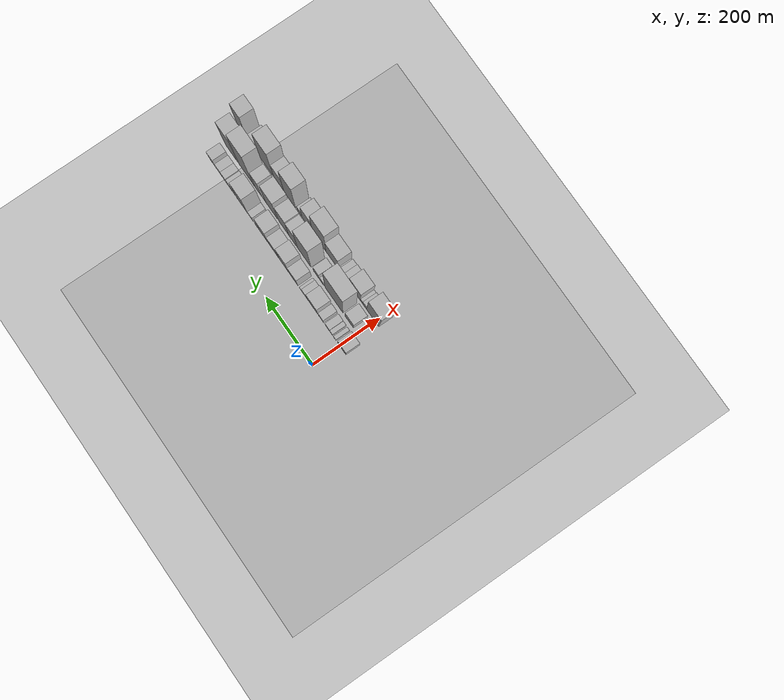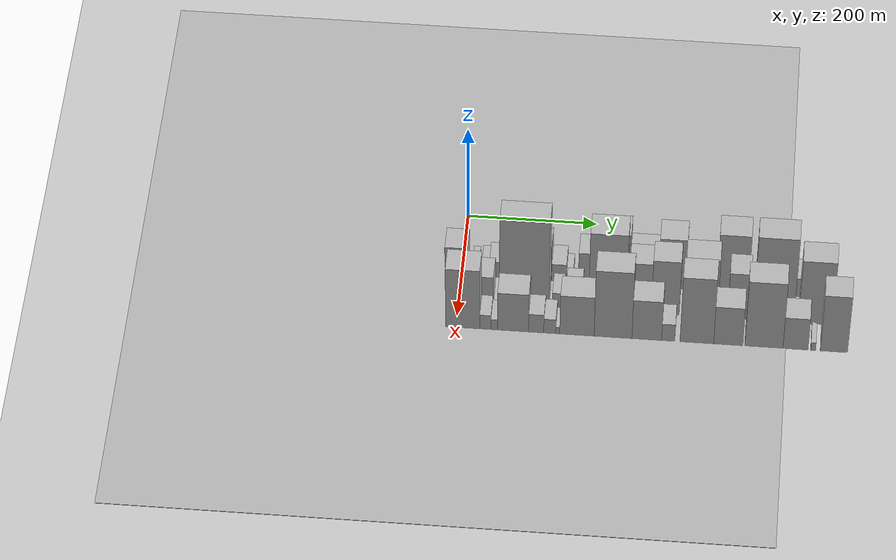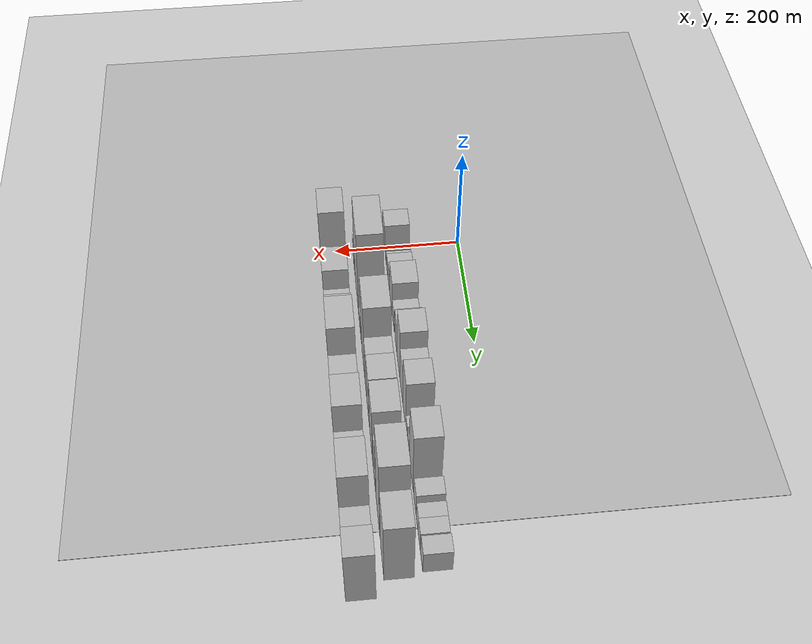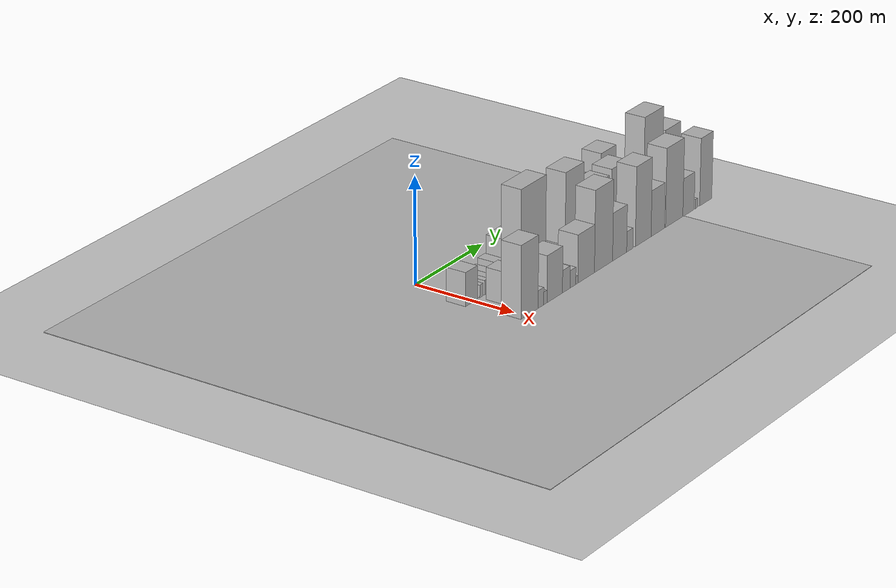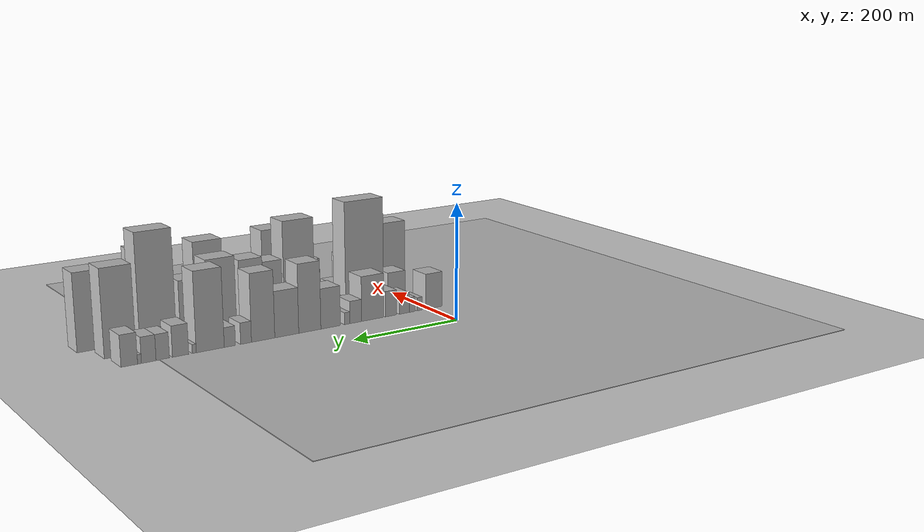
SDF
<sdf version="1.6">
 <world name="default">
  <include><name>ground_plane_1</name><uri>model://HANNAS_ground_plane</uri></include>
  <include>
   <name>ground_plane_2</name>
   <uri>model://HANNAS_ground_plane</uri>
   <pose>100 0 0  0 0 0</pose>
  </include>
  <model name="building_17">
   <static>1</static>
   <pose>100.0000 -8.6948 0 0.000000 0.000000 0.000000</pose>
   <link name="link">
    <pose>0 0 31.50 0 0 0</pose>
    <collision name="collision"><geometry><box><size>40.0000 34.7825 63.0000</size></box></geometry></collision>
    <visual name="visual">
     <cast_shadows>0</cast_shadows>
     <geometry><box><size>40.0000 34.7825 63.0000</size></box></geometry>
     <material>
      <script>
       <uri>model://HANNAS_wall/materials/scripts</uri>
       <uri>model://HANNAS_wall/materials/textures</uri>
       <name>vrc/HANNAS_wall</name>
      </script>
     </material>
    </visual>
   </link>
  </model>
  <model name="building_18">
   <static>1</static>
   <pose>100.0000 20.9811 0 0.000000 0.000000 0.000000</pose>
   <link name="link">
    <pose>0 0 12.00 0 0 0</pose>
    <collision name="collision"><geometry><box><size>40.0000 10.5693 24.0000</size></box></geometry></collision>
    <visual name="visual">
     <cast_shadows>0</cast_shadows>
     <geometry><box><size>40.0000 10.5693 24.0000</size></box></geometry>
     <material>
      <script>
       <uri>model://HANNAS_wall/materials/scripts</uri>
       <uri>model://HANNAS_wall/materials/textures</uri>
       <name>vrc/HANNAS_wall</name>
      </script>
     </material>
    </visual>
   </link>
  </model>
  <model name="building_19">
   <static>1</static>
   <pose>100.0000 36.2725 0 0.000000 0.000000 0.000000</pose>
   <link name="link">
    <pose>0 0 13.50 0 0 0</pose>
    <collision name="collision"><geometry><box><size>40.0000 12.0134 27.0000</size></box></geometry></collision>
    <visual name="visual">
     <cast_shadows>0</cast_shadows>
     <geometry><box><size>40.0000 12.0134 27.0000</size></box></geometry>
     <material>
      <script>
       <uri>model://HANNAS_wall/materials/scripts</uri>
       <uri>model://HANNAS_wall/materials/textures</uri>
       <name>vrc/HANNAS_wall</name>
      </script>
     </material>
    </visual>
   </link>
  </model>
  <model name="building_20">
   <static>1</static>
   <pose>100.0000 52.2547 0 0.000000 0.000000 0.000000</pose>
   <link name="link">
    <pose>0 0 18.00 0 0 0</pose>
    <collision name="collision"><geometry><box><size>40.0000 19.9511 36.0000</size></box></geometry></collision>
    <visual name="visual">
     <cast_shadows>0</cast_shadows>
     <geometry><box><size>40.0000 19.9511 36.0000</size></box></geometry>
     <material>
      <script>
       <uri>model://HANNAS_wall/materials/scripts</uri>
       <uri>model://HANNAS_wall/materials/textures</uri>
       <name>vrc/HANNAS_wall</name>
      </script>
     </material>
    </visual>
   </link>
  </model>
  <model name="building_21">
   <static>1</static>
   <pose>100.0000 79.4977 0 0.000000 0.000000 0.000000</pose>
   <link name="link">
    <pose>0 0 22.50 0 0 0</pose>
    <collision name="collision"><geometry><box><size>40.0000 22.5349 45.0000</size></box></geometry></collision>
    <visual name="visual">
     <cast_shadows>0</cast_shadows>
     <geometry><box><size>40.0000 22.5349 45.0000</size></box></geometry>
     <material>
      <script>
       <uri>model://HANNAS_wall/materials/scripts</uri>
       <uri>model://HANNAS_wall/materials/textures</uri>
       <name>vrc/HANNAS_wall</name>
      </script>
     </material>
    </visual>
   </link>
  </model>
  <model name="building_22">
   <static>1</static>
   <pose>100.0000 115.7366 0 0.000000 0.000000 0.000000</pose>
   <link name="link">
    <pose>0 0 39.00 0 0 0</pose>
    <collision name="collision"><geometry><box><size>40.0000 43.9428 78.0000</size></box></geometry></collision>
    <visual name="visual">
     <cast_shadows>0</cast_shadows>
     <geometry><box><size>40.0000 43.9428 78.0000</size></box></geometry>
     <material>
      <script>
       <uri>model://HANNAS_wall/materials/scripts</uri>
       <uri>model://HANNAS_wall/materials/textures</uri>
       <name>vrc/HANNAS_wall</name>
      </script>
     </material>
    </visual>
   </link>
  </model>
  <model name="building_23">
   <static>1</static>
   <pose>100.0000 149.1312 0 0.000000 0.000000 0.000000</pose>
   <link name="link">
    <pose>0 0 19.50 0 0 0</pose>
    <collision name="collision"><geometry><box><size>40.0000 22.8464 39.0000</size></box></geometry></collision>
    <visual name="visual">
     <cast_shadows>0</cast_shadows>
     <geometry><box><size>40.0000 22.8464 39.0000</size></box></geometry>
     <material>
      <script>
       <uri>model://HANNAS_wall/materials/scripts</uri>
       <uri>model://HANNAS_wall/materials/textures</uri>
       <name>vrc/HANNAS_wall</name>
      </script>
     </material>
    </visual>
   </link>
  </model>
  <model name="building_24">
   <static>1</static>
   <pose>100.0000 165.6955 0 0.000000 0.000000 0.000000</pose>
   <link name="link">
    <pose>0 0 10.50 0 0 0</pose>
    <collision name="collision"><geometry><box><size>40.0000 10.2822 21.0000</size></box></geometry></collision>
    <visual name="visual">
     <cast_shadows>0</cast_shadows>
     <geometry><box><size>40.0000 10.2822 21.0000</size></box></geometry>
     <material>
      <script>
       <uri>model://HANNAS_wall/materials/scripts</uri>
       <uri>model://HANNAS_wall/materials/textures</uri>
       <name>vrc/HANNAS_wall</name>
      </script>
     </material>
    </visual>
   </link>
  </model>
  <model name="building_25">
   <static>1</static>
   <pose>100.0000 197.4413 0 0.000000 0.000000 0.000000</pose>
   <link name="link">
    <pose>0 0 34.50 0 0 0</pose>
    <collision name="collision"><geometry><box><size>40.0000 37.2094 69.0000</size></box></geometry></collision>
    <visual name="visual">
     <cast_shadows>0</cast_shadows>
     <geometry><box><size>40.0000 37.2094 69.0000</size></box></geometry>
     <material>
      <script>
       <uri>model://HANNAS_wall/materials/scripts</uri>
       <uri>model://HANNAS_wall/materials/textures</uri>
       <name>vrc/HANNAS_wall</name>
      </script>
     </material>
    </visual>
   </link>
  </model>
  <model name="building_26">
   <static>1</static>
   <pose>100.0000 236.7408 0 0.000000 0.000000 0.000000</pose>
   <link name="link">
    <pose>0 0 58.50 0 0 0</pose>
    <collision name="collision"><geometry><box><size>40.0000 41.3896 117.0000</size></box></geometry></collision>
    <visual name="visual">
     <cast_shadows>0</cast_shadows>
     <geometry><box><size>40.0000 41.3896 117.0000</size></box></geometry>
     <material>
      <script>
       <uri>model://HANNAS_wall/materials/scripts</uri>
       <uri>model://HANNAS_wall/materials/textures</uri>
       <name>vrc/HANNAS_wall</name>
      </script>
     </material>
    </visual>
   </link>
  </model>
  <model name="building_27">
   <static>1</static>
   <pose>100.0000 279.3616 0 0.000000 0.000000 0.000000</pose>
   <link name="link">
    <pose>0 0 39.00 0 0 0</pose>
    <collision name="collision"><geometry><box><size>40.0000 43.8519 78.0000</size></box></geometry></collision>
    <visual name="visual">
     <cast_shadows>0</cast_shadows>
     <geometry><box><size>40.0000 43.8519 78.0000</size></box></geometry>
     <material>
      <script>
       <uri>model://HANNAS_wall/materials/scripts</uri>
       <uri>model://HANNAS_wall/materials/textures</uri>
       <name>vrc/HANNAS_wall</name>
      </script>
     </material>
    </visual>
   </link>
  </model>
  <model name="building_28">
   <static>1</static>
   <pose>100.0000 322.2497 0 0.000000 0.000000 0.000000</pose>
   <link name="link">
    <pose>0 0 57.00 0 0 0</pose>
    <collision name="collision"><geometry><box><size>40.0000 41.9244 114.0000</size></box></geometry></collision>
    <visual name="visual">
     <cast_shadows>0</cast_shadows>
     <geometry><box><size>40.0000 41.9244 114.0000</size></box></geometry>
     <material>
      <script>
       <uri>model://HANNAS_wall/materials/scripts</uri>
       <uri>model://HANNAS_wall/materials/textures</uri>
       <name>vrc/HANNAS_wall</name>
      </script>
     </material>
    </visual>
   </link>
  </model>
  <model name="building_29">
   <static>1</static>
   <pose>100.0000 352.7998 0 0.000000 0.000000 0.000000</pose>
   <link name="link">
    <pose>0 0 18.00 0 0 0</pose>
    <collision name="collision"><geometry><box><size>40.0000 19.1758 36.0000</size></box></geometry></collision>
    <visual name="visual">
     <cast_shadows>0</cast_shadows>
     <geometry><box><size>40.0000 19.1758 36.0000</size></box></geometry>
     <material>
      <script>
       <uri>model://HANNAS_wall/materials/scripts</uri>
       <uri>model://HANNAS_wall/materials/textures</uri>
       <name>vrc/HANNAS_wall</name>
      </script>
     </material>
    </visual>
   </link>
  </model>
  <model name="building_30">
   <static>1</static>
   <pose>100.0000 381.1690 0 0.000000 0.000000 0.000000</pose>
   <link name="link">
    <pose>0 0 16.50 0 0 0</pose>
    <collision name="collision"><geometry><box><size>40.0000 19.5627 33.0000</size></box></geometry></collision>
    <visual name="visual">
     <cast_shadows>0</cast_shadows>
     <geometry><box><size>40.0000 19.5627 33.0000</size></box></geometry>
     <material>
      <script>
       <uri>model://HANNAS_wall/materials/scripts</uri>
       <uri>model://HANNAS_wall/materials/textures</uri>
       <name>vrc/HANNAS_wall</name>
      </script>
     </material>
    </visual>
   </link>
  </model>
  <model name="building_31">
   <static>1</static>
   <pose>100.0000 415.0121 0 0.000000 0.000000 0.000000</pose>
   <link name="link">
    <pose>0 0 66.00 0 0 0</pose>
    <collision name="collision"><geometry><box><size>40.0000 48.1235 132.0000</size></box></geometry></collision>
    <visual name="visual">
     <cast_shadows>0</cast_shadows>
     <geometry><box><size>40.0000 48.1235 132.0000</size></box></geometry>
     <material>
      <script>
       <uri>model://HANNAS_wall/materials/scripts</uri>
       <uri>model://HANNAS_wall/materials/textures</uri>
       <name>vrc/HANNAS_wall</name>
      </script>
     </material>
    </visual>
   </link>
  </model>
  <model name="building_32">
   <static>1</static>
   <pose>100.0000 442.3995 0 0.000000 0.000000 0.000000</pose>
   <link name="link">
    <pose>0 0 7.50 0 0 0</pose>
    <collision name="collision"><geometry><box><size>40.0000 6.6512 15.0000</size></box></geometry></collision>
    <visual name="visual">
     <cast_shadows>0</cast_shadows>
     <geometry><box><size>40.0000 6.6512 15.0000</size></box></geometry>
     <material>
      <script>
       <uri>model://HANNAS_wall/materials/scripts</uri>
       <uri>model://HANNAS_wall/materials/textures</uri>
       <name>vrc/HANNAS_wall</name>
      </script>
     </material>
    </visual>
   </link>
  </model>
  <model name="building_33">
   <static>1</static>
   <pose>100.0000 465.3273 0 0.000000 0.000000 0.000000</pose>
   <link name="link">
    <pose>0 0 25.50 0 0 0</pose>
    <collision name="collision"><geometry><box><size>40.0000 27.2045 51.0000</size></box></geometry></collision>
    <visual name="visual">
     <cast_shadows>0</cast_shadows>
     <geometry><box><size>40.0000 27.2045 51.0000</size></box></geometry>
     <material>
      <script>
       <uri>model://HANNAS_wall/materials/scripts</uri>
       <uri>model://HANNAS_wall/materials/textures</uri>
       <name>vrc/HANNAS_wall</name>
      </script>
     </material>
    </visual>
   </link>
  </model>
  <model name="building_34">
   <static>1</static>
   <pose>100.0000 494.9482 0 0.000000 0.000000 0.000000</pose>
   <link name="link">
    <pose>0 0 21.00 0 0 0</pose>
    <collision name="collision"><geometry><box><size>40.0000 22.0373 42.0000</size></box></geometry></collision>
    <visual name="visual">
     <cast_shadows>0</cast_shadows>
     <geometry><box><size>40.0000 22.0373 42.0000</size></box></geometry>
     <material>
      <script>
       <uri>model://HANNAS_wall/materials/scripts</uri>
       <uri>model://HANNAS_wall/materials/textures</uri>
       <name>vrc/HANNAS_wall</name>
      </script>
     </material>
    </visual>
   </link>
  </model>
  <model name="building_35">
   <static>1</static>
   <pose>100.0000 517.9257 0 0.000000 0.000000 0.000000</pose>
   <link name="link">
    <pose>0 0 21.00 0 0 0</pose>
    <collision name="collision"><geometry><box><size>40.0000 23.9178 42.0000</size></box></geometry></collision>
    <visual name="visual">
     <cast_shadows>0</cast_shadows>
     <geometry><box><size>40.0000 23.9178 42.0000</size></box></geometry>
     <material>
      <script>
       <uri>model://HANNAS_wall/materials/scripts</uri>
       <uri>model://HANNAS_wall/materials/textures</uri>
       <name>vrc/HANNAS_wall</name>
      </script>
     </material>
    </visual>
   </link>
  </model>
  <model name="building_36">
   <static>1</static>
   <pose>100.0000 532.9595 0 0.000000 0.000000 0.000000</pose>
   <link name="link">
    <pose>0 0 7.50 0 0 0</pose>
    <collision name="collision"><geometry><box><size>40.0000 6.1499 15.0000</size></box></geometry></collision>
    <visual name="visual">
     <cast_shadows>0</cast_shadows>
     <geometry><box><size>40.0000 6.1499 15.0000</size></box></geometry>
     <material>
      <script>
       <uri>model://HANNAS_wall/materials/scripts</uri>
       <uri>model://HANNAS_wall/materials/textures</uri>
       <name>vrc/HANNAS_wall</name>
      </script>
     </material>
    </visual>
   </link>
  </model>
  <model name="building_37">
   <static>1</static>
   <pose>100.0000 549.3498 0 0.000000 0.000000 0.000000</pose>
   <link name="link">
    <pose>0 0 25.50 0 0 0</pose>
    <collision name="collision"><geometry><box><size>40.0000 26.6306 51.0000</size></box></geometry></collision>
    <visual name="visual">
     <cast_shadows>0</cast_shadows>
     <geometry><box><size>40.0000 26.6306 51.0000</size></box></geometry>
     <material>
      <script>
       <uri>model://HANNAS_wall/materials/scripts</uri>
       <uri>model://HANNAS_wall/materials/textures</uri>
       <name>vrc/HANNAS_wall</name>
      </script>
     </material>
    </visual>
   </link>
  </model>
  <model name="building_54">
   <static>1</static>
   <pose>152.0000 34.7778 0 0.000000 0.000000 0.000000</pose>
   <link name="link">
    <pose>0 0 30.00 0 0 0</pose>
    <collision name="collision"><geometry><box><size>40.0000 35.8274 60.0000</size></box></geometry></collision>
    <visual name="visual">
     <cast_shadows>0</cast_shadows>
     <geometry><box><size>40.0000 35.8274 60.0000</size></box></geometry>
     <material>
      <script>
       <uri>model://HANNAS_wall/materials/scripts</uri>
       <uri>model://HANNAS_wall/materials/textures</uri>
       <name>vrc/HANNAS_wall</name>
      </script>
     </material>
    </visual>
   </link>
  </model>
  <model name="building_55">
   <static>1</static>
   <pose>152.0000 99.6434 0 0.000000 0.000000 0.000000</pose>
   <link name="link">
    <pose>0 0 97.50 0 0 0</pose>
    <collision name="collision"><geometry><box><size>40.0000 75.9037 195.0000</size></box></geometry></collision>
    <visual name="visual">
     <cast_shadows>0</cast_shadows>
     <geometry><box><size>40.0000 75.9037 195.0000</size></box></geometry>
     <material>
      <script>
       <uri>model://HANNAS_wall/materials/scripts</uri>
       <uri>model://HANNAS_wall/materials/textures</uri>
       <name>vrc/HANNAS_wall</name>
      </script>
     </material>
    </visual>
   </link>
  </model>
  <model name="building_56">
   <static>1</static>
   <pose>152.0000 151.2691 0 0.000000 0.000000 0.000000</pose>
   <link name="link">
    <pose>0 0 16.50 0 0 0</pose>
    <collision name="collision"><geometry><box><size>40.0000 17.3475 33.0000</size></box></geometry></collision>
    <visual name="visual">
     <cast_shadows>0</cast_shadows>
     <geometry><box><size>40.0000 17.3475 33.0000</size></box></geometry>
     <material>
      <script>
       <uri>model://HANNAS_wall/materials/scripts</uri>
       <uri>model://HANNAS_wall/materials/textures</uri>
       <name>vrc/HANNAS_wall</name>
      </script>
     </material>
    </visual>
   </link>
  </model>
  <model name="building_57">
   <static>1</static>
   <pose>152.0000 175.4248 0 0.000000 0.000000 0.000000</pose>
   <link name="link">
    <pose>0 0 24.00 0 0 0</pose>
    <collision name="collision"><geometry><box><size>40.0000 24.9639 48.0000</size></box></geometry></collision>
    <visual name="visual">
     <cast_shadows>0</cast_shadows>
     <geometry><box><size>40.0000 24.9639 48.0000</size></box></geometry>
     <material>
      <script>
       <uri>model://HANNAS_wall/materials/scripts</uri>
       <uri>model://HANNAS_wall/materials/textures</uri>
       <name>vrc/HANNAS_wall</name>
      </script>
     </material>
    </visual>
   </link>
  </model>
  <model name="building_58">
   <static>1</static>
   <pose>152.0000 226.5765 0 0.000000 0.000000 0.000000</pose>
   <link name="link">
    <pose>0 0 88.50 0 0 0</pose>
    <collision name="collision"><geometry><box><size>40.0000 57.3395 177.0000</size></box></geometry></collision>
    <visual name="visual">
     <cast_shadows>0</cast_shadows>
     <geometry><box><size>40.0000 57.3395 177.0000</size></box></geometry>
     <material>
      <script>
       <uri>model://HANNAS_wall/materials/scripts</uri>
       <uri>model://HANNAS_wall/materials/textures</uri>
       <name>vrc/HANNAS_wall</name>
      </script>
     </material>
    </visual>
   </link>
  </model>
  <model name="building_59">
   <static>1</static>
   <pose>152.0000 275.9863 0 0.000000 0.000000 0.000000</pose>
   <link name="link">
    <pose>0 0 57.00 0 0 0</pose>
    <collision name="collision"><geometry><box><size>40.0000 35.4802 114.0000</size></box></geometry></collision>
    <visual name="visual">
     <cast_shadows>0</cast_shadows>
     <geometry><box><size>40.0000 35.4802 114.0000</size></box></geometry>
     <material>
      <script>
       <uri>model://HANNAS_wall/materials/scripts</uri>
       <uri>model://HANNAS_wall/materials/textures</uri>
       <name>vrc/HANNAS_wall</name>
      </script>
     </material>
    </visual>
   </link>
  </model>
  <model name="building_60">
   <static>1</static>
   <pose>152.0000 314.8461 0 0.000000 0.000000 0.000000</pose>
   <link name="link">
    <pose>0 0 61.50 0 0 0</pose>
    <collision name="collision"><geometry><box><size>40.0000 42.2395 123.0000</size></box></geometry></collision>
    <visual name="visual">
     <cast_shadows>0</cast_shadows>
     <geometry><box><size>40.0000 42.2395 123.0000</size></box></geometry>
     <material>
      <script>
       <uri>model://HANNAS_wall/materials/scripts</uri>
       <uri>model://HANNAS_wall/materials/textures</uri>
       <name>vrc/HANNAS_wall</name>
      </script>
     </material>
    </visual>
   </link>
  </model>
  <model name="building_61">
   <static>1</static>
   <pose>152.0000 368.6090 0 0.000000 0.000000 0.000000</pose>
   <link name="link">
    <pose>0 0 66.00 0 0 0</pose>
    <collision name="collision"><geometry><box><size>40.0000 51.2863 132.0000</size></box></geometry></collision>
    <visual name="visual">
     <cast_shadows>0</cast_shadows>
     <geometry><box><size>40.0000 51.2863 132.0000</size></box></geometry>
     <material>
      <script>
       <uri>model://HANNAS_wall/materials/scripts</uri>
       <uri>model://HANNAS_wall/materials/textures</uri>
       <name>vrc/HANNAS_wall</name>
      </script>
     </material>
    </visual>
   </link>
  </model>
  <model name="building_62">
   <static>1</static>
   <pose>152.0000 399.4510 0 0.000000 0.000000 0.000000</pose>
   <link name="link">
    <pose>0 0 12.00 0 0 0</pose>
    <collision name="collision"><geometry><box><size>40.0000 10.3978 24.0000</size></box></geometry></collision>
    <visual name="visual">
     <cast_shadows>0</cast_shadows>
     <geometry><box><size>40.0000 10.3978 24.0000</size></box></geometry>
     <material>
      <script>
       <uri>model://HANNAS_wall/materials/scripts</uri>
       <uri>model://HANNAS_wall/materials/textures</uri>
       <name>vrc/HANNAS_wall</name>
      </script>
     </material>
    </visual>
   </link>
  </model>
  <model name="building_63">
   <static>1</static>
   <pose>152.0000 425.5350 0 0.000000 0.000000 0.000000</pose>
   <link name="link">
    <pose>0 0 52.50 0 0 0</pose>
    <collision name="collision"><geometry><box><size>40.0000 31.7702 105.0000</size></box></geometry></collision>
    <visual name="visual">
     <cast_shadows>0</cast_shadows>
     <geometry><box><size>40.0000 31.7702 105.0000</size></box></geometry>
     <material>
      <script>
       <uri>model://HANNAS_wall/materials/scripts</uri>
       <uri>model://HANNAS_wall/materials/textures</uri>
       <name>vrc/HANNAS_wall</name>
      </script>
     </material>
    </visual>
   </link>
  </model>
  <model name="building_64">
   <static>1</static>
   <pose>152.0000 444.9514 0 0.000000 0.000000 0.000000</pose>
   <link name="link">
    <pose>0 0 7.50 0 0 0</pose>
    <collision name="collision"><geometry><box><size>40.0000 7.0624 15.0000</size></box></geometry></collision>
    <visual name="visual">
     <cast_shadows>0</cast_shadows>
     <geometry><box><size>40.0000 7.0624 15.0000</size></box></geometry>
     <material>
      <script>
       <uri>model://HANNAS_wall/materials/scripts</uri>
       <uri>model://HANNAS_wall/materials/textures</uri>
       <name>vrc/HANNAS_wall</name>
      </script>
     </material>
    </visual>
   </link>
  </model>
  <model name="building_65">
   <static>1</static>
   <pose>152.0000 479.2980 0 0.000000 0.000000 0.000000</pose>
   <link name="link">
    <pose>0 0 96.00 0 0 0</pose>
    <collision name="collision"><geometry><box><size>40.0000 61.6308 192.0000</size></box></geometry></collision>
    <visual name="visual">
     <cast_shadows>0</cast_shadows>
     <geometry><box><size>40.0000 61.6308 192.0000</size></box></geometry>
     <material>
      <script>
       <uri>model://HANNAS_wall/materials/scripts</uri>
       <uri>model://HANNAS_wall/materials/textures</uri>
       <name>vrc/HANNAS_wall</name>
      </script>
     </material>
    </visual>
   </link>
  </model>
  <model name="building_66">
   <static>1</static>
   <pose>152.0000 543.0552 0 0.000000 0.000000 0.000000</pose>
   <link name="link">
    <pose>0 0 72.00 0 0 0</pose>
    <collision name="collision"><geometry><box><size>40.0000 51.8836 144.0000</size></box></geometry></collision>
    <visual name="visual">
     <cast_shadows>0</cast_shadows>
     <geometry><box><size>40.0000 51.8836 144.0000</size></box></geometry>
     <material>
      <script>
       <uri>model://HANNAS_wall/materials/scripts</uri>
       <uri>model://HANNAS_wall/materials/textures</uri>
       <name>vrc/HANNAS_wall</name>
      </script>
     </material>
    </visual>
   </link>
  </model>
  <model name="building_87">
   <static>1</static>
   <pose>204.0000 10.0841 0 0.000000 0.000000 0.000000</pose>
   <link name="link">
    <pose>0 0 67.50 0 0 0</pose>
    <collision name="collision"><geometry><box><size>40.0000 51.7989 135.0000</size></box></geometry></collision>
    <visual name="visual">
     <cast_shadows>0</cast_shadows>
     <geometry><box><size>40.0000 51.7989 135.0000</size></box></geometry>
     <material>
      <script>
       <uri>model://HANNAS_wall/materials/scripts</uri>
       <uri>model://HANNAS_wall/materials/textures</uri>
       <name>vrc/HANNAS_wall</name>
      </script>
     </material>
    </visual>
   </link>
  </model>
  <model name="building_88">
   <static>1</static>
   <pose>204.0000 44.5185 0 0.000000 0.000000 0.000000</pose>
   <link name="link">
    <pose>0 0 16.50 0 0 0</pose>
    <collision name="collision"><geometry><box><size>40.0000 17.0699 33.0000</size></box></geometry></collision>
    <visual name="visual">
     <cast_shadows>0</cast_shadows>
     <geometry><box><size>40.0000 17.0699 33.0000</size></box></geometry>
     <material>
      <script>
       <uri>model://HANNAS_wall/materials/scripts</uri>
       <uri>model://HANNAS_wall/materials/textures</uri>
       <name>vrc/HANNAS_wall</name>
      </script>
     </material>
    </visual>
   </link>
  </model>
  <model name="building_89">
   <static>1</static>
   <pose>204.0000 57.9771 0 0.000000 0.000000 0.000000</pose>
   <link name="link">
    <pose>0 0 12.00 0 0 0</pose>
    <collision name="collision"><geometry><box><size>40.0000 9.8472 24.0000</size></box></geometry></collision>
    <visual name="visual">
     <cast_shadows>0</cast_shadows>
     <geometry><box><size>40.0000 9.8472 24.0000</size></box></geometry>
     <material>
      <script>
       <uri>model://HANNAS_wall/materials/scripts</uri>
       <uri>model://HANNAS_wall/materials/textures</uri>
       <name>vrc/HANNAS_wall</name>
      </script>
     </material>
    </visual>
   </link>
  </model>
  <model name="building_90">
   <static>1</static>
   <pose>204.0000 86.6123 0 0.000000 0.000000 0.000000</pose>
   <link name="link">
    <pose>0 0 43.50 0 0 0</pose>
    <collision name="collision"><geometry><box><size>40.0000 47.4232 87.0000</size></box></geometry></collision>
    <visual name="visual">
     <cast_shadows>0</cast_shadows>
     <geometry><box><size>40.0000 47.4232 87.0000</size></box></geometry>
     <material>
      <script>
       <uri>model://HANNAS_wall/materials/scripts</uri>
       <uri>model://HANNAS_wall/materials/textures</uri>
       <name>vrc/HANNAS_wall</name>
      </script>
     </material>
    </visual>
   </link>
  </model>
  <model name="building_91">
   <static>1</static>
   <pose>204.0000 121.9234 0 0.000000 0.000000 0.000000</pose>
   <link name="link">
    <pose>0 0 21.00 0 0 0</pose>
    <collision name="collision"><geometry><box><size>40.0000 23.1990 42.0000</size></box></geometry></collision>
    <visual name="visual">
     <cast_shadows>0</cast_shadows>
     <geometry><box><size>40.0000 23.1990 42.0000</size></box></geometry>
     <material>
      <script>
       <uri>model://HANNAS_wall/materials/scripts</uri>
       <uri>model://HANNAS_wall/materials/textures</uri>
       <name>vrc/HANNAS_wall</name>
      </script>
     </material>
    </visual>
   </link>
  </model>
  <model name="building_92">
   <static>1</static>
   <pose>204.0000 142.5553 0 0.000000 0.000000 0.000000</pose>
   <link name="link">
    <pose>0 0 16.50 0 0 0</pose>
    <collision name="collision"><geometry><box><size>40.0000 18.0648 33.0000</size></box></geometry></collision>
    <visual name="visual">
     <cast_shadows>0</cast_shadows>
     <geometry><box><size>40.0000 18.0648 33.0000</size></box></geometry>
     <material>
      <script>
       <uri>model://HANNAS_wall/materials/scripts</uri>
       <uri>model://HANNAS_wall/materials/textures</uri>
       <name>vrc/HANNAS_wall</name>
      </script>
     </material>
    </visual>
   </link>
  </model>
  <model name="building_93">
   <static>1</static>
   <pose>204.0000 154.6533 0 0.000000 0.000000 0.000000</pose>
   <link name="link">
    <pose>0 0 7.50 0 0 0</pose>
    <collision name="collision"><geometry><box><size>40.0000 6.1312 15.0000</size></box></geometry></collision>
    <visual name="visual">
     <cast_shadows>0</cast_shadows>
     <geometry><box><size>40.0000 6.1312 15.0000</size></box></geometry>
     <material>
      <script>
       <uri>model://HANNAS_wall/materials/scripts</uri>
       <uri>model://HANNAS_wall/materials/textures</uri>
       <name>vrc/HANNAS_wall</name>
      </script>
     </material>
    </visual>
   </link>
  </model>
  <model name="building_94">
   <static>1</static>
   <pose>204.0000 183.8300 0 0.000000 0.000000 0.000000</pose>
   <link name="link">
    <pose>0 0 45.00 0 0 0</pose>
    <collision name="collision"><geometry><box><size>40.0000 52.2223 90.0000</size></box></geometry></collision>
    <visual name="visual">
     <cast_shadows>0</cast_shadows>
     <geometry><box><size>40.0000 52.2223 90.0000</size></box></geometry>
     <material>
      <script>
       <uri>model://HANNAS_wall/materials/scripts</uri>
       <uri>model://HANNAS_wall/materials/textures</uri>
       <name>vrc/HANNAS_wall</name>
      </script>
     </material>
    </visual>
   </link>
  </model>
  <model name="building_95">
   <static>1</static>
   <pose>204.0000 238.6181 0 0.000000 0.000000 0.000000</pose>
   <link name="link">
    <pose>0 0 76.50 0 0 0</pose>
    <collision name="collision"><geometry><box><size>40.0000 57.3539 153.0000</size></box></geometry></collision>
    <visual name="visual">
     <cast_shadows>0</cast_shadows>
     <geometry><box><size>40.0000 57.3539 153.0000</size></box></geometry>
     <material>
      <script>
       <uri>model://HANNAS_wall/materials/scripts</uri>
       <uri>model://HANNAS_wall/materials/textures</uri>
       <name>vrc/HANNAS_wall</name>
      </script>
     </material>
    </visual>
   </link>
  </model>
  <model name="building_96">
   <static>1</static>
   <pose>204.0000 289.8020 0 0.000000 0.000000 0.000000</pose>
   <link name="link">
    <pose>0 0 45.00 0 0 0</pose>
    <collision name="collision"><geometry><box><size>40.0000 45.0139 90.0000</size></box></geometry></collision>
    <visual name="visual">
     <cast_shadows>0</cast_shadows>
     <geometry><box><size>40.0000 45.0139 90.0000</size></box></geometry>
     <material>
      <script>
       <uri>model://HANNAS_wall/materials/scripts</uri>
       <uri>model://HANNAS_wall/materials/textures</uri>
       <name>vrc/HANNAS_wall</name>
      </script>
     </material>
    </visual>
   </link>
  </model>
  <model name="building_97">
   <static>1</static>
   <pose>204.0000 322.2520 0 0.000000 0.000000 0.000000</pose>
   <link name="link">
    <pose>0 0 19.50 0 0 0</pose>
    <collision name="collision"><geometry><box><size>40.0000 19.8861 39.0000</size></box></geometry></collision>
    <visual name="visual">
     <cast_shadows>0</cast_shadows>
     <geometry><box><size>40.0000 19.8861 39.0000</size></box></geometry>
     <material>
      <script>
       <uri>model://HANNAS_wall/materials/scripts</uri>
       <uri>model://HANNAS_wall/materials/textures</uri>
       <name>vrc/HANNAS_wall</name>
      </script>
     </material>
    </visual>
   </link>
  </model>
  <model name="building_98">
   <static>1</static>
   <pose>204.0000 365.7022 0 0.000000 0.000000 0.000000</pose>
   <link name="link">
    <pose>0 0 75.00 0 0 0</pose>
    <collision name="collision"><geometry><box><size>40.0000 51.0144 150.0000</size></box></geometry></collision>
    <visual name="visual">
     <cast_shadows>0</cast_shadows>
     <geometry><box><size>40.0000 51.0144 150.0000</size></box></geometry>
     <material>
      <script>
       <uri>model://HANNAS_wall/materials/scripts</uri>
       <uri>model://HANNAS_wall/materials/textures</uri>
       <name>vrc/HANNAS_wall</name>
      </script>
     </material>
    </visual>
   </link>
  </model>
  <model name="building_99">
   <static>1</static>
   <pose>204.0000 413.2464 0 0.000000 0.000000 0.000000</pose>
   <link name="link">
    <pose>0 0 43.50 0 0 0</pose>
    <collision name="collision"><geometry><box><size>40.0000 44.0738 87.0000</size></box></geometry></collision>
    <visual name="visual">
     <cast_shadows>0</cast_shadows>
     <geometry><box><size>40.0000 44.0738 87.0000</size></box></geometry>
     <material>
      <script>
       <uri>model://HANNAS_wall/materials/scripts</uri>
       <uri>model://HANNAS_wall/materials/textures</uri>
       <name>vrc/HANNAS_wall</name>
      </script>
     </material>
    </visual>
   </link>
  </model>
  <model name="building_100">
   <static>1</static>
   <pose>204.0000 467.1545 0 0.000000 0.000000 0.000000</pose>
   <link name="link">
    <pose>0 0 75.00 0 0 0</pose>
    <collision name="collision"><geometry><box><size>40.0000 57.7424 150.0000</size></box></geometry></collision>
    <visual name="visual">
     <cast_shadows>0</cast_shadows>
     <geometry><box><size>40.0000 57.7424 150.0000</size></box></geometry>
     <material>
      <script>
       <uri>model://HANNAS_wall/materials/scripts</uri>
       <uri>model://HANNAS_wall/materials/textures</uri>
       <name>vrc/HANNAS_wall</name>
      </script>
     </material>
    </visual>
   </link>
  </model>
  <model name="building_101">
   <static>1</static>
   <pose>204.0000 514.9271 0 0.000000 0.000000 0.000000</pose>
   <link name="link">
    <pose>0 0 36.00 0 0 0</pose>
    <collision name="collision"><geometry><box><size>40.0000 37.8030 72.0000</size></box></geometry></collision>
    <visual name="visual">
     <cast_shadows>0</cast_shadows>
     <geometry><box><size>40.0000 37.8030 72.0000</size></box></geometry>
     <material>
      <script>
       <uri>model://HANNAS_wall/materials/scripts</uri>
       <uri>model://HANNAS_wall/materials/textures</uri>
       <name>vrc/HANNAS_wall</name>
      </script>
     </material>
    </visual>
   </link>
  </model>
  <model name="building_102">
   <static>1</static>
   <pose>204.0000 541.5728 0 0.000000 0.000000 0.000000</pose>
   <link name="link">
    <pose>0 0 9.00 0 0 0</pose>
    <collision name="collision"><geometry><box><size>40.0000 7.4883 18.0000</size></box></geometry></collision>
    <visual name="visual">
     <cast_shadows>0</cast_shadows>
     <geometry><box><size>40.0000 7.4883 18.0000</size></box></geometry>
     <material>
      <script>
       <uri>model://HANNAS_wall/materials/scripts</uri>
       <uri>model://HANNAS_wall/materials/textures</uri>
       <name>vrc/HANNAS_wall</name>
      </script>
     </material>
    </visual>
   </link>
  </model>
  <model name="building_103">
   <static>1</static>
   <pose>204.0000 572.8175 0 0.000000 0.000000 0.000000</pose>
   <link name="link">
    <pose>0 0 64.50 0 0 0</pose>
    <collision name="collision"><geometry><box><size>40.0000 41.0010 129.0000</size></box></geometry></collision>
    <visual name="visual">
     <cast_shadows>0</cast_shadows>
     <geometry><box><size>40.0000 41.0010 129.0000</size></box></geometry>
     <material>
      <script>
       <uri>model://HANNAS_wall/materials/scripts</uri>
       <uri>model://HANNAS_wall/materials/textures</uri>
       <name>vrc/HANNAS_wall</name>
      </script>
     </material>
    </visual>
   </link>
  </model>
 </world>
</sdf>
